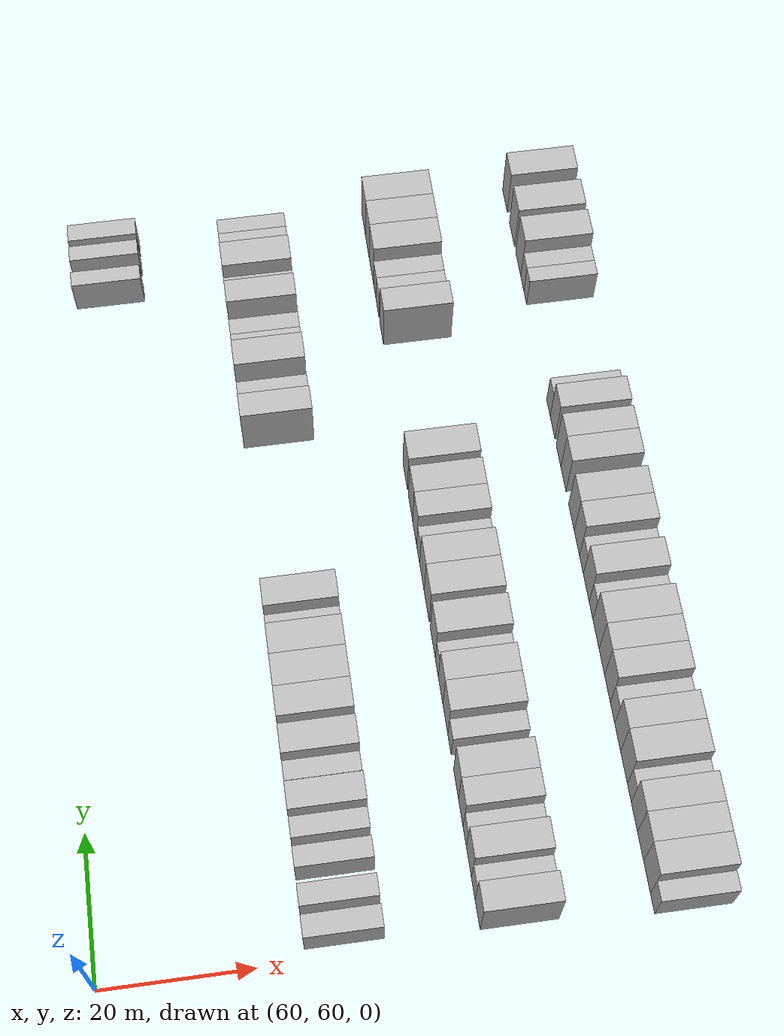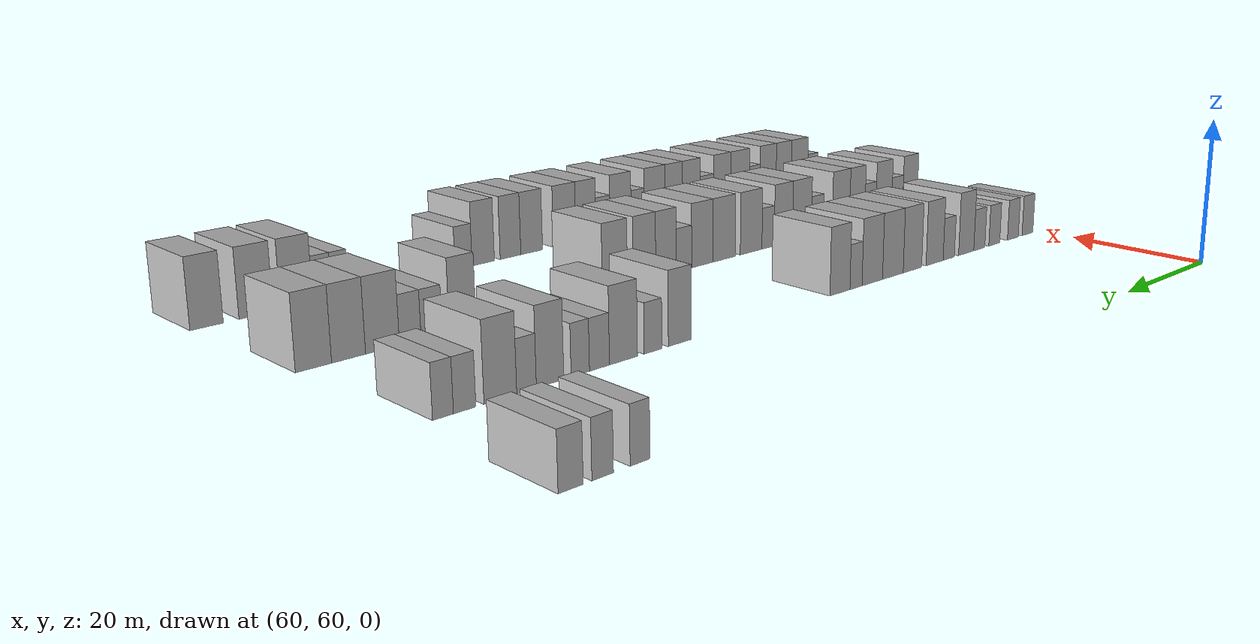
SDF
<sdf version="1.6">
 <world name="default">
  <model name="building_494">
   <static>1</static>
   <pose>69.0000 161.0789 0 0.000000 0.000000 0.000000</pose>
   <link name="link">
    <pose>0 0 3.00 0 0 0</pose>
    <collision name="collision"><geometry><box><size>10.0000 2.4466 6.0000</size></box></geometry></collision>
    <visual name="visual">
     <cast_shadows>0</cast_shadows>
     <geometry><box><size>10.0000 2.4466 6.0000</size></box></geometry>
     <material>
      <script>
       <uri>model://HANNAS_wall/materials/scripts</uri>
       <uri>model://HANNAS_wall/materials/textures</uri>
       <name>vrc/HANNAS_wall</name>
      </script>
     </material>
    </visual>
   </link>
  </model>
  <model name="building_495">
   <static>1</static>
   <pose>69.0000 165.5669 0 0.000000 0.000000 0.000000</pose>
   <link name="link">
    <pose>0 0 3.00 0 0 0</pose>
    <collision name="collision"><geometry><box><size>10.0000 2.5295 6.0000</size></box></geometry></collision>
    <visual name="visual">
     <cast_shadows>0</cast_shadows>
     <geometry><box><size>10.0000 2.5295 6.0000</size></box></geometry>
     <material>
      <script>
       <uri>model://HANNAS_wall/materials/scripts</uri>
       <uri>model://HANNAS_wall/materials/textures</uri>
       <name>vrc/HANNAS_wall</name>
      </script>
     </material>
    </visual>
   </link>
  </model>
  <model name="building_496">
   <static>1</static>
   <pose>69.0000 169.2468 0 0.000000 0.000000 0.000000</pose>
   <link name="link">
    <pose>0 0 3.00 0 0 0</pose>
    <collision name="collision"><geometry><box><size>10.0000 2.8302 6.0000</size></box></geometry></collision>
    <visual name="visual">
     <cast_shadows>0</cast_shadows>
     <geometry><box><size>10.0000 2.8302 6.0000</size></box></geometry>
     <material>
      <script>
       <uri>model://HANNAS_wall/materials/scripts</uri>
       <uri>model://HANNAS_wall/materials/textures</uri>
       <name>vrc/HANNAS_wall</name>
      </script>
     </material>
    </visual>
   </link>
  </model>
  <model name="building_658">
   <static>1</static>
   <pose>91.0000 62.9854 0 0.000000 0.000000 0.000000</pose>
   <link name="link">
    <pose>0 0 3.00 0 0 0</pose>
    <collision name="collision"><geometry><box><size>10.0000 2.9302 6.0000</size></box></geometry></collision>
    <visual name="visual">
     <cast_shadows>0</cast_shadows>
     <geometry><box><size>10.0000 2.9302 6.0000</size></box></geometry>
     <material>
      <script>
       <uri>model://HANNAS_wall/materials/scripts</uri>
       <uri>model://HANNAS_wall/materials/textures</uri>
       <name>vrc/HANNAS_wall</name>
      </script>
     </material>
    </visual>
   </link>
  </model>
  <model name="building_659">
   <static>1</static>
   <pose>91.0000 66.8813 0 0.000000 0.000000 0.000000</pose>
   <link name="link">
    <pose>0 0 3.00 0 0 0</pose>
    <collision name="collision"><geometry><box><size>10.0000 2.8616 6.0000</size></box></geometry></collision>
    <visual name="visual">
     <cast_shadows>0</cast_shadows>
     <geometry><box><size>10.0000 2.8616 6.0000</size></box></geometry>
     <material>
      <script>
       <uri>model://HANNAS_wall/materials/scripts</uri>
       <uri>model://HANNAS_wall/materials/textures</uri>
       <name>vrc/HANNAS_wall</name>
      </script>
     </material>
    </visual>
   </link>
  </model>
  <model name="building_660">
   <static>1</static>
   <pose>91.0000 71.7022 0 0.000000 0.000000 0.000000</pose>
   <link name="link">
    <pose>0 0 3.00 0 0 0</pose>
    <collision name="collision"><geometry><box><size>10.0000 2.7802 6.0000</size></box></geometry></collision>
    <visual name="visual">
     <cast_shadows>0</cast_shadows>
     <geometry><box><size>10.0000 2.7802 6.0000</size></box></geometry>
     <material>
      <script>
       <uri>model://HANNAS_wall/materials/scripts</uri>
       <uri>model://HANNAS_wall/materials/textures</uri>
       <name>vrc/HANNAS_wall</name>
      </script>
     </material>
    </visual>
   </link>
  </model>
  <model name="building_661">
   <static>1</static>
   <pose>91.0000 75.4722 0 0.000000 0.000000 0.000000</pose>
   <link name="link">
    <pose>0 0 3.00 0 0 0</pose>
    <collision name="collision"><geometry><box><size>10.0000 2.7597 6.0000</size></box></geometry></collision>
    <visual name="visual">
     <cast_shadows>0</cast_shadows>
     <geometry><box><size>10.0000 2.7597 6.0000</size></box></geometry>
     <material>
      <script>
       <uri>model://HANNAS_wall/materials/scripts</uri>
       <uri>model://HANNAS_wall/materials/textures</uri>
       <name>vrc/HANNAS_wall</name>
      </script>
     </material>
    </visual>
   </link>
  </model>
  <model name="building_662">
   <static>1</static>
   <pose>91.0000 78.7008 0 0.000000 0.000000 0.000000</pose>
   <link name="link">
    <pose>0 0 4.50 0 0 0</pose>
    <collision name="collision"><geometry><box><size>10.0000 3.6976 9.0000</size></box></geometry></collision>
    <visual name="visual">
     <cast_shadows>0</cast_shadows>
     <geometry><box><size>10.0000 3.6976 9.0000</size></box></geometry>
     <material>
      <script>
       <uri>model://HANNAS_wall/materials/scripts</uri>
       <uri>model://HANNAS_wall/materials/textures</uri>
       <name>vrc/HANNAS_wall</name>
      </script>
     </material>
    </visual>
   </link>
  </model>
  <model name="building_663">
   <static>1</static>
   <pose>91.0000 82.8826 0 0.000000 0.000000 0.000000</pose>
   <link name="link">
    <pose>0 0 3.00 0 0 0</pose>
    <collision name="collision"><geometry><box><size>10.0000 2.6661 6.0000</size></box></geometry></collision>
    <visual name="visual">
     <cast_shadows>0</cast_shadows>
     <geometry><box><size>10.0000 2.6661 6.0000</size></box></geometry>
     <material>
      <script>
       <uri>model://HANNAS_wall/materials/scripts</uri>
       <uri>model://HANNAS_wall/materials/textures</uri>
       <name>vrc/HANNAS_wall</name>
      </script>
     </material>
    </visual>
   </link>
  </model>
  <model name="building_664">
   <static>1</static>
   <pose>91.0000 86.1890 0 0.000000 0.000000 0.000000</pose>
   <link name="link">
    <pose>0 0 4.50 0 0 0</pose>
    <collision name="collision"><geometry><box><size>10.0000 3.9467 9.0000</size></box></geometry></collision>
    <visual name="visual">
     <cast_shadows>0</cast_shadows>
     <geometry><box><size>10.0000 3.9467 9.0000</size></box></geometry>
     <material>
      <script>
       <uri>model://HANNAS_wall/materials/scripts</uri>
       <uri>model://HANNAS_wall/materials/textures</uri>
       <name>vrc/HANNAS_wall</name>
      </script>
     </material>
    </visual>
   </link>
  </model>
  <model name="building_665">
   <static>1</static>
   <pose>91.0000 91.2200 0 0.000000 0.000000 0.000000</pose>
   <link name="link">
    <pose>0 0 4.50 0 0 0</pose>
    <collision name="collision"><geometry><box><size>10.0000 4.1153 9.0000</size></box></geometry></collision>
    <visual name="visual">
     <cast_shadows>0</cast_shadows>
     <geometry><box><size>10.0000 4.1153 9.0000</size></box></geometry>
     <material>
      <script>
       <uri>model://HANNAS_wall/materials/scripts</uri>
       <uri>model://HANNAS_wall/materials/textures</uri>
       <name>vrc/HANNAS_wall</name>
      </script>
     </material>
    </visual>
   </link>
  </model>
  <model name="building_666">
   <static>1</static>
   <pose>91.0000 95.5158 0 0.000000 0.000000 0.000000</pose>
   <link name="link">
    <pose>0 0 4.50 0 0 0</pose>
    <collision name="collision"><geometry><box><size>10.0000 4.4763 9.0000</size></box></geometry></collision>
    <visual name="visual">
     <cast_shadows>0</cast_shadows>
     <geometry><box><size>10.0000 4.4763 9.0000</size></box></geometry>
     <material>
      <script>
       <uri>model://HANNAS_wall/materials/scripts</uri>
       <uri>model://HANNAS_wall/materials/textures</uri>
       <name>vrc/HANNAS_wall</name>
      </script>
     </material>
    </visual>
   </link>
  </model>
  <model name="building_667">
   <static>1</static>
   <pose>91.0000 99.8958 0 0.000000 0.000000 0.000000</pose>
   <link name="link">
    <pose>0 0 4.50 0 0 0</pose>
    <collision name="collision"><geometry><box><size>10.0000 4.2836 9.0000</size></box></geometry></collision>
    <visual name="visual">
     <cast_shadows>0</cast_shadows>
     <geometry><box><size>10.0000 4.2836 9.0000</size></box></geometry>
     <material>
      <script>
       <uri>model://HANNAS_wall/materials/scripts</uri>
       <uri>model://HANNAS_wall/materials/textures</uri>
       <name>vrc/HANNAS_wall</name>
      </script>
     </material>
    </visual>
   </link>
  </model>
  <model name="building_668">
   <static>1</static>
   <pose>91.0000 103.2703 0 0.000000 0.000000 0.000000</pose>
   <link name="link">
    <pose>0 0 3.00 0 0 0</pose>
    <collision name="collision"><geometry><box><size>10.0000 2.4654 6.0000</size></box></geometry></collision>
    <visual name="visual">
     <cast_shadows>0</cast_shadows>
     <geometry><box><size>10.0000 2.4654 6.0000</size></box></geometry>
     <material>
      <script>
       <uri>model://HANNAS_wall/materials/scripts</uri>
       <uri>model://HANNAS_wall/materials/textures</uri>
       <name>vrc/HANNAS_wall</name>
      </script>
     </material>
    </visual>
   </link>
  </model>
  <model name="building_669">
   <static>1</static>
   <pose>91.0000 106.4936 0 0.000000 0.000000 0.000000</pose>
   <link name="link">
    <pose>0 0 4.50 0 0 0</pose>
    <collision name="collision"><geometry><box><size>10.0000 3.9811 9.0000</size></box></geometry></collision>
    <visual name="visual">
     <cast_shadows>0</cast_shadows>
     <geometry><box><size>10.0000 3.9811 9.0000</size></box></geometry>
     <material>
      <script>
       <uri>model://HANNAS_wall/materials/scripts</uri>
       <uri>model://HANNAS_wall/materials/textures</uri>
       <name>vrc/HANNAS_wall</name>
      </script>
     </material>
    </visual>
   </link>
  </model>
  <model name="building_670">
   <static>1</static>
   <pose>91.0000 134.9703 0 0.000000 0.000000 0.000000</pose>
   <link name="link">
    <pose>0 0 4.50 0 0 0</pose>
    <collision name="collision"><geometry><box><size>10.0000 3.6575 9.0000</size></box></geometry></collision>
    <visual name="visual">
     <cast_shadows>0</cast_shadows>
     <geometry><box><size>10.0000 3.6575 9.0000</size></box></geometry>
     <material>
      <script>
       <uri>model://HANNAS_wall/materials/scripts</uri>
       <uri>model://HANNAS_wall/materials/textures</uri>
       <name>vrc/HANNAS_wall</name>
      </script>
     </material>
    </visual>
   </link>
  </model>
  <model name="building_671">
   <static>1</static>
   <pose>91.0000 139.1588 0 0.000000 0.000000 0.000000</pose>
   <link name="link">
    <pose>0 0 3.00 0 0 0</pose>
    <collision name="collision"><geometry><box><size>10.0000 2.7195 6.0000</size></box></geometry></collision>
    <visual name="visual">
     <cast_shadows>0</cast_shadows>
     <geometry><box><size>10.0000 2.7195 6.0000</size></box></geometry>
     <material>
      <script>
       <uri>model://HANNAS_wall/materials/scripts</uri>
       <uri>model://HANNAS_wall/materials/textures</uri>
       <name>vrc/HANNAS_wall</name>
      </script>
     </material>
    </visual>
   </link>
  </model>
  <model name="building_672">
   <static>1</static>
   <pose>91.0000 143.5808 0 0.000000 0.000000 0.000000</pose>
   <link name="link">
    <pose>0 0 4.50 0 0 0</pose>
    <collision name="collision"><geometry><box><size>10.0000 4.1246 9.0000</size></box></geometry></collision>
    <visual name="visual">
     <cast_shadows>0</cast_shadows>
     <geometry><box><size>10.0000 4.1246 9.0000</size></box></geometry>
     <material>
      <script>
       <uri>model://HANNAS_wall/materials/scripts</uri>
       <uri>model://HANNAS_wall/materials/textures</uri>
       <name>vrc/HANNAS_wall</name>
      </script>
     </material>
    </visual>
   </link>
  </model>
  <model name="building_673">
   <static>1</static>
   <pose>91.0000 147.0712 0 0.000000 0.000000 0.000000</pose>
   <link name="link">
    <pose>0 0 3.00 0 0 0</pose>
    <collision name="collision"><geometry><box><size>10.0000 2.8561 6.0000</size></box></geometry></collision>
    <visual name="visual">
     <cast_shadows>0</cast_shadows>
     <geometry><box><size>10.0000 2.8561 6.0000</size></box></geometry>
     <material>
      <script>
       <uri>model://HANNAS_wall/materials/scripts</uri>
       <uri>model://HANNAS_wall/materials/textures</uri>
       <name>vrc/HANNAS_wall</name>
      </script>
     </material>
    </visual>
   </link>
  </model>
  <model name="building_674">
   <static>1</static>
   <pose>91.0000 149.7808 0 0.000000 0.000000 0.000000</pose>
   <link name="link">
    <pose>0 0 3.00 0 0 0</pose>
    <collision name="collision"><geometry><box><size>10.0000 2.5631 6.0000</size></box></geometry></collision>
    <visual name="visual">
     <cast_shadows>0</cast_shadows>
     <geometry><box><size>10.0000 2.5631 6.0000</size></box></geometry>
     <material>
      <script>
       <uri>model://HANNAS_wall/materials/scripts</uri>
       <uri>model://HANNAS_wall/materials/textures</uri>
       <name>vrc/HANNAS_wall</name>
      </script>
     </material>
    </visual>
   </link>
  </model>
  <model name="building_675">
   <static>1</static>
   <pose>91.0000 153.9041 0 0.000000 0.000000 0.000000</pose>
   <link name="link">
    <pose>0 0 4.50 0 0 0</pose>
    <collision name="collision"><geometry><box><size>10.0000 3.6835 9.0000</size></box></geometry></collision>
    <visual name="visual">
     <cast_shadows>0</cast_shadows>
     <geometry><box><size>10.0000 3.6835 9.0000</size></box></geometry>
     <material>
      <script>
       <uri>model://HANNAS_wall/materials/scripts</uri>
       <uri>model://HANNAS_wall/materials/textures</uri>
       <name>vrc/HANNAS_wall</name>
      </script>
     </material>
    </visual>
   </link>
  </model>
  <model name="building_676">
   <static>1</static>
   <pose>91.0000 157.0249 0 0.000000 0.000000 0.000000</pose>
   <link name="link">
    <pose>0 0 3.00 0 0 0</pose>
    <collision name="collision"><geometry><box><size>10.0000 2.5581 6.0000</size></box></geometry></collision>
    <visual name="visual">
     <cast_shadows>0</cast_shadows>
     <geometry><box><size>10.0000 2.5581 6.0000</size></box></geometry>
     <material>
      <script>
       <uri>model://HANNAS_wall/materials/scripts</uri>
       <uri>model://HANNAS_wall/materials/textures</uri>
       <name>vrc/HANNAS_wall</name>
      </script>
     </material>
    </visual>
   </link>
  </model>
  <model name="building_677">
   <static>1</static>
   <pose>91.0000 160.3768 0 0.000000 0.000000 0.000000</pose>
   <link name="link">
    <pose>0 0 4.50 0 0 0</pose>
    <collision name="collision"><geometry><box><size>10.0000 4.1455 9.0000</size></box></geometry></collision>
    <visual name="visual">
     <cast_shadows>0</cast_shadows>
     <geometry><box><size>10.0000 4.1455 9.0000</size></box></geometry>
     <material>
      <script>
       <uri>model://HANNAS_wall/materials/scripts</uri>
       <uri>model://HANNAS_wall/materials/textures</uri>
       <name>vrc/HANNAS_wall</name>
      </script>
     </material>
    </visual>
   </link>
  </model>
  <model name="building_678">
   <static>1</static>
   <pose>91.0000 164.8043 0 0.000000 0.000000 0.000000</pose>
   <link name="link">
    <pose>0 0 3.00 0 0 0</pose>
    <collision name="collision"><geometry><box><size>10.0000 2.7096 6.0000</size></box></geometry></collision>
    <visual name="visual">
     <cast_shadows>0</cast_shadows>
     <geometry><box><size>10.0000 2.7096 6.0000</size></box></geometry>
     <material>
      <script>
       <uri>model://HANNAS_wall/materials/scripts</uri>
       <uri>model://HANNAS_wall/materials/textures</uri>
       <name>vrc/HANNAS_wall</name>
      </script>
     </material>
    </visual>
   </link>
  </model>
  <model name="building_679">
   <static>1</static>
   <pose>91.0000 167.3980 0 0.000000 0.000000 0.000000</pose>
   <link name="link">
    <pose>0 0 3.00 0 0 0</pose>
    <collision name="collision"><geometry><box><size>10.0000 2.4777 6.0000</size></box></geometry></collision>
    <visual name="visual">
     <cast_shadows>0</cast_shadows>
     <geometry><box><size>10.0000 2.4777 6.0000</size></box></geometry>
     <material>
      <script>
       <uri>model://HANNAS_wall/materials/scripts</uri>
       <uri>model://HANNAS_wall/materials/textures</uri>
       <name>vrc/HANNAS_wall</name>
      </script>
     </material>
    </visual>
   </link>
  </model>
  <model name="building_837">
   <static>1</static>
   <pose>113.0000 62.8647 0 0.000000 0.000000 0.000000</pose>
   <link name="link">
    <pose>0 0 4.50 0 0 0</pose>
    <collision name="collision"><geometry><box><size>10.0000 3.8068 9.0000</size></box></geometry></collision>
    <visual name="visual">
     <cast_shadows>0</cast_shadows>
     <geometry><box><size>10.0000 3.8068 9.0000</size></box></geometry>
     <material>
      <script>
       <uri>model://HANNAS_wall/materials/scripts</uri>
       <uri>model://HANNAS_wall/materials/textures</uri>
       <name>vrc/HANNAS_wall</name>
      </script>
     </material>
    </visual>
   </link>
  </model>
  <model name="building_838">
   <static>1</static>
   <pose>113.0000 66.1760 0 0.000000 0.000000 0.000000</pose>
   <link name="link">
    <pose>0 0 3.00 0 0 0</pose>
    <collision name="collision"><geometry><box><size>10.0000 2.8157 6.0000</size></box></geometry></collision>
    <visual name="visual">
     <cast_shadows>0</cast_shadows>
     <geometry><box><size>10.0000 2.8157 6.0000</size></box></geometry>
     <material>
      <script>
       <uri>model://HANNAS_wall/materials/scripts</uri>
       <uri>model://HANNAS_wall/materials/textures</uri>
       <name>vrc/HANNAS_wall</name>
      </script>
     </material>
    </visual>
   </link>
  </model>
  <model name="building_839">
   <static>1</static>
   <pose>113.0000 69.5844 0 0.000000 0.000000 0.000000</pose>
   <link name="link">
    <pose>0 0 4.50 0 0 0</pose>
    <collision name="collision"><geometry><box><size>10.0000 4.0012 9.0000</size></box></geometry></collision>
    <visual name="visual">
     <cast_shadows>0</cast_shadows>
     <geometry><box><size>10.0000 4.0012 9.0000</size></box></geometry>
     <material>
      <script>
       <uri>model://HANNAS_wall/materials/scripts</uri>
       <uri>model://HANNAS_wall/materials/textures</uri>
       <name>vrc/HANNAS_wall</name>
      </script>
     </material>
    </visual>
   </link>
  </model>
  <model name="building_840">
   <static>1</static>
   <pose>113.0000 72.9335 0 0.000000 0.000000 0.000000</pose>
   <link name="link">
    <pose>0 0 3.00 0 0 0</pose>
    <collision name="collision"><geometry><box><size>10.0000 2.6971 6.0000</size></box></geometry></collision>
    <visual name="visual">
     <cast_shadows>0</cast_shadows>
     <geometry><box><size>10.0000 2.6971 6.0000</size></box></geometry>
     <material>
      <script>
       <uri>model://HANNAS_wall/materials/scripts</uri>
       <uri>model://HANNAS_wall/materials/textures</uri>
       <name>vrc/HANNAS_wall</name>
      </script>
     </material>
    </visual>
   </link>
  </model>
  <model name="building_841">
   <static>1</static>
   <pose>113.0000 76.1173 0 0.000000 0.000000 0.000000</pose>
   <link name="link">
    <pose>0 0 4.50 0 0 0</pose>
    <collision name="collision"><geometry><box><size>10.0000 3.6704 9.0000</size></box></geometry></collision>
    <visual name="visual">
     <cast_shadows>0</cast_shadows>
     <geometry><box><size>10.0000 3.6704 9.0000</size></box></geometry>
     <material>
      <script>
       <uri>model://HANNAS_wall/materials/scripts</uri>
       <uri>model://HANNAS_wall/materials/textures</uri>
       <name>vrc/HANNAS_wall</name>
      </script>
     </material>
    </visual>
   </link>
  </model>
  <model name="building_842">
   <static>1</static>
   <pose>113.0000 79.9904 0 0.000000 0.000000 0.000000</pose>
   <link name="link">
    <pose>0 0 4.50 0 0 0</pose>
    <collision name="collision"><geometry><box><size>10.0000 4.0756 9.0000</size></box></geometry></collision>
    <visual name="visual">
     <cast_shadows>0</cast_shadows>
     <geometry><box><size>10.0000 4.0756 9.0000</size></box></geometry>
     <material>
      <script>
       <uri>model://HANNAS_wall/materials/scripts</uri>
       <uri>model://HANNAS_wall/materials/textures</uri>
       <name>vrc/HANNAS_wall</name>
      </script>
     </material>
    </visual>
   </link>
  </model>
  <model name="building_843">
   <static>1</static>
   <pose>113.0000 85.4217 0 0.000000 0.000000 0.000000</pose>
   <link name="link">
    <pose>0 0 3.00 0 0 0</pose>
    <collision name="collision"><geometry><box><size>10.0000 2.7871 6.0000</size></box></geometry></collision>
    <visual name="visual">
     <cast_shadows>0</cast_shadows>
     <geometry><box><size>10.0000 2.7871 6.0000</size></box></geometry>
     <material>
      <script>
       <uri>model://HANNAS_wall/materials/scripts</uri>
       <uri>model://HANNAS_wall/materials/textures</uri>
       <name>vrc/HANNAS_wall</name>
      </script>
     </material>
    </visual>
   </link>
  </model>
  <model name="building_844">
   <static>1</static>
   <pose>113.0000 88.9289 0 0.000000 0.000000 0.000000</pose>
   <link name="link">
    <pose>0 0 4.50 0 0 0</pose>
    <collision name="collision"><geometry><box><size>10.0000 4.2273 9.0000</size></box></geometry></collision>
    <visual name="visual">
     <cast_shadows>0</cast_shadows>
     <geometry><box><size>10.0000 4.2273 9.0000</size></box></geometry>
     <material>
      <script>
       <uri>model://HANNAS_wall/materials/scripts</uri>
       <uri>model://HANNAS_wall/materials/textures</uri>
       <name>vrc/HANNAS_wall</name>
      </script>
     </material>
    </visual>
   </link>
  </model>
  <model name="building_845">
   <static>1</static>
   <pose>113.0000 93.0027 0 0.000000 0.000000 0.000000</pose>
   <link name="link">
    <pose>0 0 4.50 0 0 0</pose>
    <collision name="collision"><geometry><box><size>10.0000 3.9203 9.0000</size></box></geometry></collision>
    <visual name="visual">
     <cast_shadows>0</cast_shadows>
     <geometry><box><size>10.0000 3.9203 9.0000</size></box></geometry>
     <material>
      <script>
       <uri>model://HANNAS_wall/materials/scripts</uri>
       <uri>model://HANNAS_wall/materials/textures</uri>
       <name>vrc/HANNAS_wall</name>
      </script>
     </material>
    </visual>
   </link>
  </model>
  <model name="building_846">
   <static>1</static>
   <pose>113.0000 96.2761 0 0.000000 0.000000 0.000000</pose>
   <link name="link">
    <pose>0 0 3.00 0 0 0</pose>
    <collision name="collision"><geometry><box><size>10.0000 2.6263 6.0000</size></box></geometry></collision>
    <visual name="visual">
     <cast_shadows>0</cast_shadows>
     <geometry><box><size>10.0000 2.6263 6.0000</size></box></geometry>
     <material>
      <script>
       <uri>model://HANNAS_wall/materials/scripts</uri>
       <uri>model://HANNAS_wall/materials/textures</uri>
       <name>vrc/HANNAS_wall</name>
      </script>
     </material>
    </visual>
   </link>
  </model>
  <model name="building_847">
   <static>1</static>
   <pose>113.0000 99.8346 0 0.000000 0.000000 0.000000</pose>
   <link name="link">
    <pose>0 0 4.50 0 0 0</pose>
    <collision name="collision"><geometry><box><size>10.0000 4.4907 9.0000</size></box></geometry></collision>
    <visual name="visual">
     <cast_shadows>0</cast_shadows>
     <geometry><box><size>10.0000 4.4907 9.0000</size></box></geometry>
     <material>
      <script>
       <uri>model://HANNAS_wall/materials/scripts</uri>
       <uri>model://HANNAS_wall/materials/textures</uri>
       <name>vrc/HANNAS_wall</name>
      </script>
     </material>
    </visual>
   </link>
  </model>
  <model name="building_848">
   <static>1</static>
   <pose>113.0000 105.3227 0 0.000000 0.000000 0.000000</pose>
   <link name="link">
    <pose>0 0 4.50 0 0 0</pose>
    <collision name="collision"><geometry><box><size>10.0000 4.4855 9.0000</size></box></geometry></collision>
    <visual name="visual">
     <cast_shadows>0</cast_shadows>
     <geometry><box><size>10.0000 4.4855 9.0000</size></box></geometry>
     <material>
      <script>
       <uri>model://HANNAS_wall/materials/scripts</uri>
       <uri>model://HANNAS_wall/materials/textures</uri>
       <name>vrc/HANNAS_wall</name>
      </script>
     </material>
    </visual>
   </link>
  </model>
  <model name="building_849">
   <static>1</static>
   <pose>113.0000 109.6178 0 0.000000 0.000000 0.000000</pose>
   <link name="link">
    <pose>0 0 4.50 0 0 0</pose>
    <collision name="collision"><geometry><box><size>10.0000 4.1046 9.0000</size></box></geometry></collision>
    <visual name="visual">
     <cast_shadows>0</cast_shadows>
     <geometry><box><size>10.0000 4.1046 9.0000</size></box></geometry>
     <material>
      <script>
       <uri>model://HANNAS_wall/materials/scripts</uri>
       <uri>model://HANNAS_wall/materials/textures</uri>
       <name>vrc/HANNAS_wall</name>
      </script>
     </material>
    </visual>
   </link>
  </model>
  <model name="building_850">
   <static>1</static>
   <pose>113.0000 113.1269 0 0.000000 0.000000 0.000000</pose>
   <link name="link">
    <pose>0 0 3.00 0 0 0</pose>
    <collision name="collision"><geometry><box><size>10.0000 2.9137 6.0000</size></box></geometry></collision>
    <visual name="visual">
     <cast_shadows>0</cast_shadows>
     <geometry><box><size>10.0000 2.9137 6.0000</size></box></geometry>
     <material>
      <script>
       <uri>model://HANNAS_wall/materials/scripts</uri>
       <uri>model://HANNAS_wall/materials/textures</uri>
       <name>vrc/HANNAS_wall</name>
      </script>
     </material>
    </visual>
   </link>
  </model>
  <model name="building_851">
   <static>1</static>
   <pose>113.0000 116.4620 0 0.000000 0.000000 0.000000</pose>
   <link name="link">
    <pose>0 0 4.50 0 0 0</pose>
    <collision name="collision"><geometry><box><size>10.0000 3.7565 9.0000</size></box></geometry></collision>
    <visual name="visual">
     <cast_shadows>0</cast_shadows>
     <geometry><box><size>10.0000 3.7565 9.0000</size></box></geometry>
     <material>
      <script>
       <uri>model://HANNAS_wall/materials/scripts</uri>
       <uri>model://HANNAS_wall/materials/textures</uri>
       <name>vrc/HANNAS_wall</name>
      </script>
     </material>
    </visual>
   </link>
  </model>
  <model name="building_852">
   <static>1</static>
   <pose>113.0000 120.3670 0 0.000000 0.000000 0.000000</pose>
   <link name="link">
    <pose>0 0 4.50 0 0 0</pose>
    <collision name="collision"><geometry><box><size>10.0000 4.0535 9.0000</size></box></geometry></collision>
    <visual name="visual">
     <cast_shadows>0</cast_shadows>
     <geometry><box><size>10.0000 4.0535 9.0000</size></box></geometry>
     <material>
      <script>
       <uri>model://HANNAS_wall/materials/scripts</uri>
       <uri>model://HANNAS_wall/materials/textures</uri>
       <name>vrc/HANNAS_wall</name>
      </script>
     </material>
    </visual>
   </link>
  </model>
  <model name="building_853">
   <static>1</static>
   <pose>113.0000 125.5590 0 0.000000 0.000000 0.000000</pose>
   <link name="link">
    <pose>0 0 4.50 0 0 0</pose>
    <collision name="collision"><geometry><box><size>10.0000 4.3306 9.0000</size></box></geometry></collision>
    <visual name="visual">
     <cast_shadows>0</cast_shadows>
     <geometry><box><size>10.0000 4.3306 9.0000</size></box></geometry>
     <material>
      <script>
       <uri>model://HANNAS_wall/materials/scripts</uri>
       <uri>model://HANNAS_wall/materials/textures</uri>
       <name>vrc/HANNAS_wall</name>
      </script>
     </material>
    </visual>
   </link>
  </model>
  <model name="building_854">
   <static>1</static>
   <pose>113.0000 149.4443 0 0.000000 0.000000 0.000000</pose>
   <link name="link">
    <pose>0 0 4.50 0 0 0</pose>
    <collision name="collision"><geometry><box><size>10.0000 3.8133 9.0000</size></box></geometry></collision>
    <visual name="visual">
     <cast_shadows>0</cast_shadows>
     <geometry><box><size>10.0000 3.8133 9.0000</size></box></geometry>
     <material>
      <script>
       <uri>model://HANNAS_wall/materials/scripts</uri>
       <uri>model://HANNAS_wall/materials/textures</uri>
       <name>vrc/HANNAS_wall</name>
      </script>
     </material>
    </visual>
   </link>
  </model>
  <model name="building_855">
   <static>1</static>
   <pose>113.0000 153.8116 0 0.000000 0.000000 0.000000</pose>
   <link name="link">
    <pose>0 0 3.00 0 0 0</pose>
    <collision name="collision"><geometry><box><size>10.0000 2.9213 6.0000</size></box></geometry></collision>
    <visual name="visual">
     <cast_shadows>0</cast_shadows>
     <geometry><box><size>10.0000 2.9213 6.0000</size></box></geometry>
     <material>
      <script>
       <uri>model://HANNAS_wall/materials/scripts</uri>
       <uri>model://HANNAS_wall/materials/textures</uri>
       <name>vrc/HANNAS_wall</name>
      </script>
     </material>
    </visual>
   </link>
  </model>
  <model name="building_856">
   <static>1</static>
   <pose>113.0000 156.7289 0 0.000000 0.000000 0.000000</pose>
   <link name="link">
    <pose>0 0 3.00 0 0 0</pose>
    <collision name="collision"><geometry><box><size>10.0000 2.9133 6.0000</size></box></geometry></collision>
    <visual name="visual">
     <cast_shadows>0</cast_shadows>
     <geometry><box><size>10.0000 2.9133 6.0000</size></box></geometry>
     <material>
      <script>
       <uri>model://HANNAS_wall/materials/scripts</uri>
       <uri>model://HANNAS_wall/materials/textures</uri>
       <name>vrc/HANNAS_wall</name>
      </script>
     </material>
    </visual>
   </link>
  </model>
  <model name="building_857">
   <static>1</static>
   <pose>113.0000 160.3954 0 0.000000 0.000000 0.000000</pose>
   <link name="link">
    <pose>0 0 4.50 0 0 0</pose>
    <collision name="collision"><geometry><box><size>10.0000 4.4196 9.0000</size></box></geometry></collision>
    <visual name="visual">
     <cast_shadows>0</cast_shadows>
     <geometry><box><size>10.0000 4.4196 9.0000</size></box></geometry>
     <material>
      <script>
       <uri>model://HANNAS_wall/materials/scripts</uri>
       <uri>model://HANNAS_wall/materials/textures</uri>
       <name>vrc/HANNAS_wall</name>
      </script>
     </material>
    </visual>
   </link>
  </model>
  <model name="building_858">
   <static>1</static>
   <pose>113.0000 164.7367 0 0.000000 0.000000 0.000000</pose>
   <link name="link">
    <pose>0 0 4.50 0 0 0</pose>
    <collision name="collision"><geometry><box><size>10.0000 4.2629 9.0000</size></box></geometry></collision>
    <visual name="visual">
     <cast_shadows>0</cast_shadows>
     <geometry><box><size>10.0000 4.2629 9.0000</size></box></geometry>
     <material>
      <script>
       <uri>model://HANNAS_wall/materials/scripts</uri>
       <uri>model://HANNAS_wall/materials/textures</uri>
       <name>vrc/HANNAS_wall</name>
      </script>
     </material>
    </visual>
   </link>
  </model>
  <model name="building_859">
   <static>1</static>
   <pose>113.0000 169.0626 0 0.000000 0.000000 0.000000</pose>
   <link name="link">
    <pose>0 0 4.50 0 0 0</pose>
    <collision name="collision"><geometry><box><size>10.0000 4.3890 9.0000</size></box></geometry></collision>
    <visual name="visual">
     <cast_shadows>0</cast_shadows>
     <geometry><box><size>10.0000 4.3890 9.0000</size></box></geometry>
     <material>
      <script>
       <uri>model://HANNAS_wall/materials/scripts</uri>
       <uri>model://HANNAS_wall/materials/textures</uri>
       <name>vrc/HANNAS_wall</name>
      </script>
     </material>
    </visual>
   </link>
  </model>
  <model name="building_1021">
   <static>1</static>
   <pose>135.0000 61.2390 0 0.000000 0.000000 0.000000</pose>
   <link name="link">
    <pose>0 0 3.00 0 0 0</pose>
    <collision name="collision"><geometry><box><size>10.0000 2.5972 6.0000</size></box></geometry></collision>
    <visual name="visual">
     <cast_shadows>0</cast_shadows>
     <geometry><box><size>10.0000 2.5972 6.0000</size></box></geometry>
     <material>
      <script>
       <uri>model://HANNAS_wall/materials/scripts</uri>
       <uri>model://HANNAS_wall/materials/textures</uri>
       <name>vrc/HANNAS_wall</name>
      </script>
     </material>
    </visual>
   </link>
  </model>
  <model name="building_1022">
   <static>1</static>
   <pose>135.0000 64.6154 0 0.000000 0.000000 0.000000</pose>
   <link name="link">
    <pose>0 0 4.50 0 0 0</pose>
    <collision name="collision"><geometry><box><size>10.0000 4.1557 9.0000</size></box></geometry></collision>
    <visual name="visual">
     <cast_shadows>0</cast_shadows>
     <geometry><box><size>10.0000 4.1557 9.0000</size></box></geometry>
     <material>
      <script>
       <uri>model://HANNAS_wall/materials/scripts</uri>
       <uri>model://HANNAS_wall/materials/textures</uri>
       <name>vrc/HANNAS_wall</name>
      </script>
     </material>
    </visual>
   </link>
  </model>
  <model name="building_1023">
   <static>1</static>
   <pose>135.0000 68.6233 0 0.000000 0.000000 0.000000</pose>
   <link name="link">
    <pose>0 0 4.50 0 0 0</pose>
    <collision name="collision"><geometry><box><size>10.0000 3.8601 9.0000</size></box></geometry></collision>
    <visual name="visual">
     <cast_shadows>0</cast_shadows>
     <geometry><box><size>10.0000 3.8601 9.0000</size></box></geometry>
     <material>
      <script>
       <uri>model://HANNAS_wall/materials/scripts</uri>
       <uri>model://HANNAS_wall/materials/textures</uri>
       <name>vrc/HANNAS_wall</name>
      </script>
     </material>
    </visual>
   </link>
  </model>
  <model name="building_1024">
   <static>1</static>
   <pose>135.0000 72.5341 0 0.000000 0.000000 0.000000</pose>
   <link name="link">
    <pose>0 0 4.50 0 0 0</pose>
    <collision name="collision"><geometry><box><size>10.0000 3.9614 9.0000</size></box></geometry></collision>
    <visual name="visual">
     <cast_shadows>0</cast_shadows>
     <geometry><box><size>10.0000 3.9614 9.0000</size></box></geometry>
     <material>
      <script>
       <uri>model://HANNAS_wall/materials/scripts</uri>
       <uri>model://HANNAS_wall/materials/textures</uri>
       <name>vrc/HANNAS_wall</name>
      </script>
     </material>
    </visual>
   </link>
  </model>
  <model name="building_1025">
   <static>1</static>
   <pose>135.0000 75.7629 0 0.000000 0.000000 0.000000</pose>
   <link name="link">
    <pose>0 0 3.00 0 0 0</pose>
    <collision name="collision"><geometry><box><size>10.0000 2.4963 6.0000</size></box></geometry></collision>
    <visual name="visual">
     <cast_shadows>0</cast_shadows>
     <geometry><box><size>10.0000 2.4963 6.0000</size></box></geometry>
     <material>
      <script>
       <uri>model://HANNAS_wall/materials/scripts</uri>
       <uri>model://HANNAS_wall/materials/textures</uri>
       <name>vrc/HANNAS_wall</name>
      </script>
     </material>
    </visual>
   </link>
  </model>
  <model name="building_1026">
   <static>1</static>
   <pose>135.0000 79.2284 0 0.000000 0.000000 0.000000</pose>
   <link name="link">
    <pose>0 0 4.50 0 0 0</pose>
    <collision name="collision"><geometry><box><size>10.0000 4.4348 9.0000</size></box></geometry></collision>
    <visual name="visual">
     <cast_shadows>0</cast_shadows>
     <geometry><box><size>10.0000 4.4348 9.0000</size></box></geometry>
     <material>
      <script>
       <uri>model://HANNAS_wall/materials/scripts</uri>
       <uri>model://HANNAS_wall/materials/textures</uri>
       <name>vrc/HANNAS_wall</name>
      </script>
     </material>
    </visual>
   </link>
  </model>
  <model name="building_1027">
   <static>1</static>
   <pose>135.0000 83.4018 0 0.000000 0.000000 0.000000</pose>
   <link name="link">
    <pose>0 0 4.50 0 0 0</pose>
    <collision name="collision"><geometry><box><size>10.0000 3.9120 9.0000</size></box></geometry></collision>
    <visual name="visual">
     <cast_shadows>0</cast_shadows>
     <geometry><box><size>10.0000 3.9120 9.0000</size></box></geometry>
     <material>
      <script>
       <uri>model://HANNAS_wall/materials/scripts</uri>
       <uri>model://HANNAS_wall/materials/textures</uri>
       <name>vrc/HANNAS_wall</name>
      </script>
     </material>
    </visual>
   </link>
  </model>
  <model name="building_1028">
   <static>1</static>
   <pose>135.0000 86.8309 0 0.000000 0.000000 0.000000</pose>
   <link name="link">
    <pose>0 0 3.00 0 0 0</pose>
    <collision name="collision"><geometry><box><size>10.0000 2.9461 6.0000</size></box></geometry></collision>
    <visual name="visual">
     <cast_shadows>0</cast_shadows>
     <geometry><box><size>10.0000 2.9461 6.0000</size></box></geometry>
     <material>
      <script>
       <uri>model://HANNAS_wall/materials/scripts</uri>
       <uri>model://HANNAS_wall/materials/textures</uri>
       <name>vrc/HANNAS_wall</name>
      </script>
     </material>
    </visual>
   </link>
  </model>
  <model name="building_1029">
   <static>1</static>
   <pose>135.0000 90.2566 0 0.000000 0.000000 0.000000</pose>
   <link name="link">
    <pose>0 0 4.50 0 0 0</pose>
    <collision name="collision"><geometry><box><size>10.0000 3.9053 9.0000</size></box></geometry></collision>
    <visual name="visual">
     <cast_shadows>0</cast_shadows>
     <geometry><box><size>10.0000 3.9053 9.0000</size></box></geometry>
     <material>
      <script>
       <uri>model://HANNAS_wall/materials/scripts</uri>
       <uri>model://HANNAS_wall/materials/textures</uri>
       <name>vrc/HANNAS_wall</name>
      </script>
     </material>
    </visual>
   </link>
  </model>
  <model name="building_1030">
   <static>1</static>
   <pose>135.0000 94.1016 0 0.000000 0.000000 0.000000</pose>
   <link name="link">
    <pose>0 0 4.50 0 0 0</pose>
    <collision name="collision"><geometry><box><size>10.0000 3.7848 9.0000</size></box></geometry></collision>
    <visual name="visual">
     <cast_shadows>0</cast_shadows>
     <geometry><box><size>10.0000 3.7848 9.0000</size></box></geometry>
     <material>
      <script>
       <uri>model://HANNAS_wall/materials/scripts</uri>
       <uri>model://HANNAS_wall/materials/textures</uri>
       <name>vrc/HANNAS_wall</name>
      </script>
     </material>
    </visual>
   </link>
  </model>
  <model name="building_1031">
   <static>1</static>
   <pose>135.0000 98.1835 0 0.000000 0.000000 0.000000</pose>
   <link name="link">
    <pose>0 0 4.50 0 0 0</pose>
    <collision name="collision"><geometry><box><size>10.0000 4.3790 9.0000</size></box></geometry></collision>
    <visual name="visual">
     <cast_shadows>0</cast_shadows>
     <geometry><box><size>10.0000 4.3790 9.0000</size></box></geometry>
     <material>
      <script>
       <uri>model://HANNAS_wall/materials/scripts</uri>
       <uri>model://HANNAS_wall/materials/textures</uri>
       <name>vrc/HANNAS_wall</name>
      </script>
     </material>
    </visual>
   </link>
  </model>
  <model name="building_1032">
   <static>1</static>
   <pose>135.0000 101.6965 0 0.000000 0.000000 0.000000</pose>
   <link name="link">
    <pose>0 0 3.00 0 0 0</pose>
    <collision name="collision"><geometry><box><size>10.0000 2.6470 6.0000</size></box></geometry></collision>
    <visual name="visual">
     <cast_shadows>0</cast_shadows>
     <geometry><box><size>10.0000 2.6470 6.0000</size></box></geometry>
     <material>
      <script>
       <uri>model://HANNAS_wall/materials/scripts</uri>
       <uri>model://HANNAS_wall/materials/textures</uri>
       <name>vrc/HANNAS_wall</name>
      </script>
     </material>
    </visual>
   </link>
  </model>
  <model name="building_1033">
   <static>1</static>
   <pose>135.0000 105.1191 0 0.000000 0.000000 0.000000</pose>
   <link name="link">
    <pose>0 0 4.50 0 0 0</pose>
    <collision name="collision"><geometry><box><size>10.0000 4.1981 9.0000</size></box></geometry></collision>
    <visual name="visual">
     <cast_shadows>0</cast_shadows>
     <geometry><box><size>10.0000 4.1981 9.0000</size></box></geometry>
     <material>
      <script>
       <uri>model://HANNAS_wall/materials/scripts</uri>
       <uri>model://HANNAS_wall/materials/textures</uri>
       <name>vrc/HANNAS_wall</name>
      </script>
     </material>
    </visual>
   </link>
  </model>
  <model name="building_1034">
   <static>1</static>
   <pose>135.0000 108.6188 0 0.000000 0.000000 0.000000</pose>
   <link name="link">
    <pose>0 0 3.00 0 0 0</pose>
    <collision name="collision"><geometry><box><size>10.0000 2.8013 6.0000</size></box></geometry></collision>
    <visual name="visual">
     <cast_shadows>0</cast_shadows>
     <geometry><box><size>10.0000 2.8013 6.0000</size></box></geometry>
     <material>
      <script>
       <uri>model://HANNAS_wall/materials/scripts</uri>
       <uri>model://HANNAS_wall/materials/textures</uri>
       <name>vrc/HANNAS_wall</name>
      </script>
     </material>
    </visual>
   </link>
  </model>
  <model name="building_1035">
   <static>1</static>
   <pose>135.0000 111.9428 0 0.000000 0.000000 0.000000</pose>
   <link name="link">
    <pose>0 0 4.50 0 0 0</pose>
    <collision name="collision"><geometry><box><size>10.0000 3.8468 9.0000</size></box></geometry></collision>
    <visual name="visual">
     <cast_shadows>0</cast_shadows>
     <geometry><box><size>10.0000 3.8468 9.0000</size></box></geometry>
     <material>
      <script>
       <uri>model://HANNAS_wall/materials/scripts</uri>
       <uri>model://HANNAS_wall/materials/textures</uri>
       <name>vrc/HANNAS_wall</name>
      </script>
     </material>
    </visual>
   </link>
  </model>
  <model name="building_1036">
   <static>1</static>
   <pose>135.0000 115.9668 0 0.000000 0.000000 0.000000</pose>
   <link name="link">
    <pose>0 0 4.50 0 0 0</pose>
    <collision name="collision"><geometry><box><size>10.0000 4.2013 9.0000</size></box></geometry></collision>
    <visual name="visual">
     <cast_shadows>0</cast_shadows>
     <geometry><box><size>10.0000 4.2013 9.0000</size></box></geometry>
     <material>
      <script>
       <uri>model://HANNAS_wall/materials/scripts</uri>
       <uri>model://HANNAS_wall/materials/textures</uri>
       <name>vrc/HANNAS_wall</name>
      </script>
     </material>
    </visual>
   </link>
  </model>
  <model name="building_1037">
   <static>1</static>
   <pose>135.0000 122.0138 0 0.000000 0.000000 0.000000</pose>
   <link name="link">
    <pose>0 0 4.50 0 0 0</pose>
    <collision name="collision"><geometry><box><size>10.0000 3.8928 9.0000</size></box></geometry></collision>
    <visual name="visual">
     <cast_shadows>0</cast_shadows>
     <geometry><box><size>10.0000 3.8928 9.0000</size></box></geometry>
     <material>
      <script>
       <uri>model://HANNAS_wall/materials/scripts</uri>
       <uri>model://HANNAS_wall/materials/textures</uri>
       <name>vrc/HANNAS_wall</name>
      </script>
     </material>
    </visual>
   </link>
  </model>
  <model name="building_1038">
   <static>1</static>
   <pose>135.0000 125.7631 0 0.000000 0.000000 0.000000</pose>
   <link name="link">
    <pose>0 0 4.50 0 0 0</pose>
    <collision name="collision"><geometry><box><size>10.0000 3.6058 9.0000</size></box></geometry></collision>
    <visual name="visual">
     <cast_shadows>0</cast_shadows>
     <geometry><box><size>10.0000 3.6058 9.0000</size></box></geometry>
     <material>
      <script>
       <uri>model://HANNAS_wall/materials/scripts</uri>
       <uri>model://HANNAS_wall/materials/textures</uri>
       <name>vrc/HANNAS_wall</name>
      </script>
     </material>
    </visual>
   </link>
  </model>
  <model name="building_1039">
   <static>1</static>
   <pose>135.0000 130.4482 0 0.000000 0.000000 0.000000</pose>
   <link name="link">
    <pose>0 0 4.50 0 0 0</pose>
    <collision name="collision"><geometry><box><size>10.0000 3.7645 9.0000</size></box></geometry></collision>
    <visual name="visual">
     <cast_shadows>0</cast_shadows>
     <geometry><box><size>10.0000 3.7645 9.0000</size></box></geometry>
     <material>
      <script>
       <uri>model://HANNAS_wall/materials/scripts</uri>
       <uri>model://HANNAS_wall/materials/textures</uri>
       <name>vrc/HANNAS_wall</name>
      </script>
     </material>
    </visual>
   </link>
  </model>
  <model name="building_1040">
   <static>1</static>
   <pose>135.0000 133.7371 0 0.000000 0.000000 0.000000</pose>
   <link name="link">
    <pose>0 0 3.00 0 0 0</pose>
    <collision name="collision"><geometry><box><size>10.0000 2.8133 6.0000</size></box></geometry></collision>
    <visual name="visual">
     <cast_shadows>0</cast_shadows>
     <geometry><box><size>10.0000 2.8133 6.0000</size></box></geometry>
     <material>
      <script>
       <uri>model://HANNAS_wall/materials/scripts</uri>
       <uri>model://HANNAS_wall/materials/textures</uri>
       <name>vrc/HANNAS_wall</name>
      </script>
     </material>
    </visual>
   </link>
  </model>
  <model name="building_1041">
   <static>1</static>
   <pose>135.0000 152.7687 0 0.000000 0.000000 0.000000</pose>
   <link name="link">
    <pose>0 0 3.00 0 0 0</pose>
    <collision name="collision"><geometry><box><size>10.0000 2.4166 6.0000</size></box></geometry></collision>
    <visual name="visual">
     <cast_shadows>0</cast_shadows>
     <geometry><box><size>10.0000 2.4166 6.0000</size></box></geometry>
     <material>
      <script>
       <uri>model://HANNAS_wall/materials/scripts</uri>
       <uri>model://HANNAS_wall/materials/textures</uri>
       <name>vrc/HANNAS_wall</name>
      </script>
     </material>
    </visual>
   </link>
  </model>
  <model name="building_1042">
   <static>1</static>
   <pose>135.0000 155.2999 0 0.000000 0.000000 0.000000</pose>
   <link name="link">
    <pose>0 0 3.00 0 0 0</pose>
    <collision name="collision"><geometry><box><size>10.0000 2.6460 6.0000</size></box></geometry></collision>
    <visual name="visual">
     <cast_shadows>0</cast_shadows>
     <geometry><box><size>10.0000 2.6460 6.0000</size></box></geometry>
     <material>
      <script>
       <uri>model://HANNAS_wall/materials/scripts</uri>
       <uri>model://HANNAS_wall/materials/textures</uri>
       <name>vrc/HANNAS_wall</name>
      </script>
     </material>
    </visual>
   </link>
  </model>
  <model name="building_1043">
   <static>1</static>
   <pose>135.0000 158.8292 0 0.000000 0.000000 0.000000</pose>
   <link name="link">
    <pose>0 0 4.50 0 0 0</pose>
    <collision name="collision"><geometry><box><size>10.0000 4.4127 9.0000</size></box></geometry></collision>
    <visual name="visual">
     <cast_shadows>0</cast_shadows>
     <geometry><box><size>10.0000 4.4127 9.0000</size></box></geometry>
     <material>
      <script>
       <uri>model://HANNAS_wall/materials/scripts</uri>
       <uri>model://HANNAS_wall/materials/textures</uri>
       <name>vrc/HANNAS_wall</name>
      </script>
     </material>
    </visual>
   </link>
  </model>
  <model name="building_1044">
   <static>1</static>
   <pose>135.0000 164.2794 0 0.000000 0.000000 0.000000</pose>
   <link name="link">
    <pose>0 0 4.50 0 0 0</pose>
    <collision name="collision"><geometry><box><size>10.0000 4.4877 9.0000</size></box></geometry></collision>
    <visual name="visual">
     <cast_shadows>0</cast_shadows>
     <geometry><box><size>10.0000 4.4877 9.0000</size></box></geometry>
     <material>
      <script>
       <uri>model://HANNAS_wall/materials/scripts</uri>
       <uri>model://HANNAS_wall/materials/textures</uri>
       <name>vrc/HANNAS_wall</name>
      </script>
     </material>
    </visual>
   </link>
  </model>
  <model name="building_1045">
   <static>1</static>
   <pose>135.0000 170.6151 0 0.000000 0.000000 0.000000</pose>
   <link name="link">
    <pose>0 0 4.50 0 0 0</pose>
    <collision name="collision"><geometry><box><size>10.0000 4.1836 9.0000</size></box></geometry></collision>
    <visual name="visual">
     <cast_shadows>0</cast_shadows>
     <geometry><box><size>10.0000 4.1836 9.0000</size></box></geometry>
     <material>
      <script>
       <uri>model://HANNAS_wall/materials/scripts</uri>
       <uri>model://HANNAS_wall/materials/textures</uri>
       <name>vrc/HANNAS_wall</name>
      </script>
     </material>
    </visual>
   </link>
  </model>
 </world>
</sdf>
